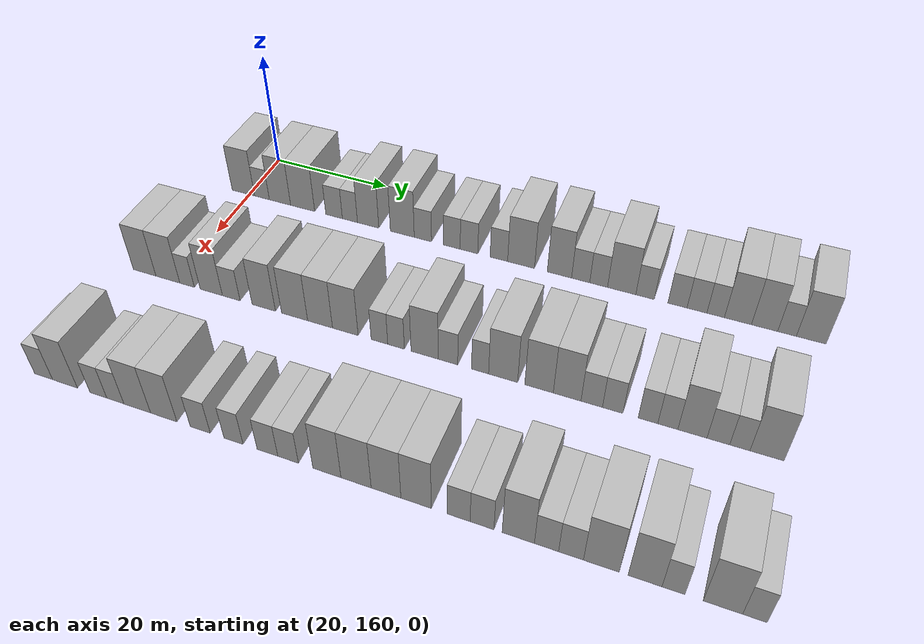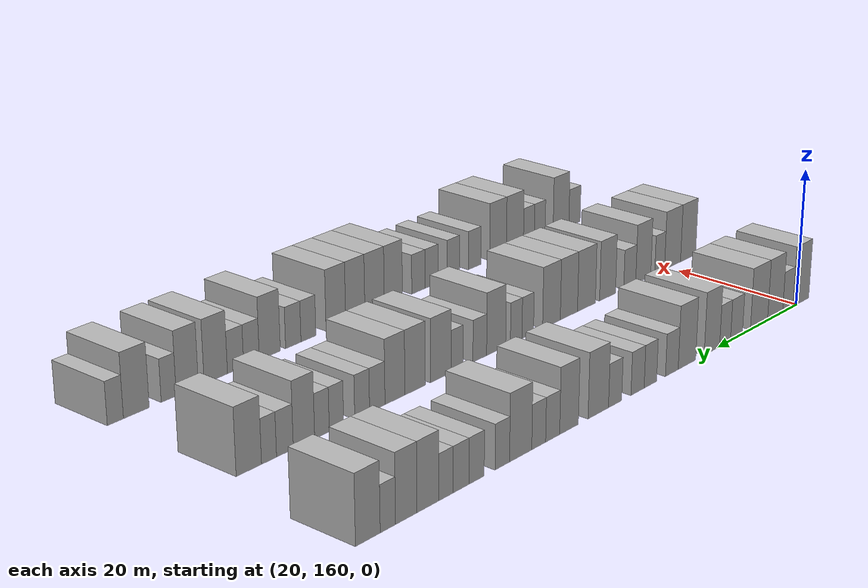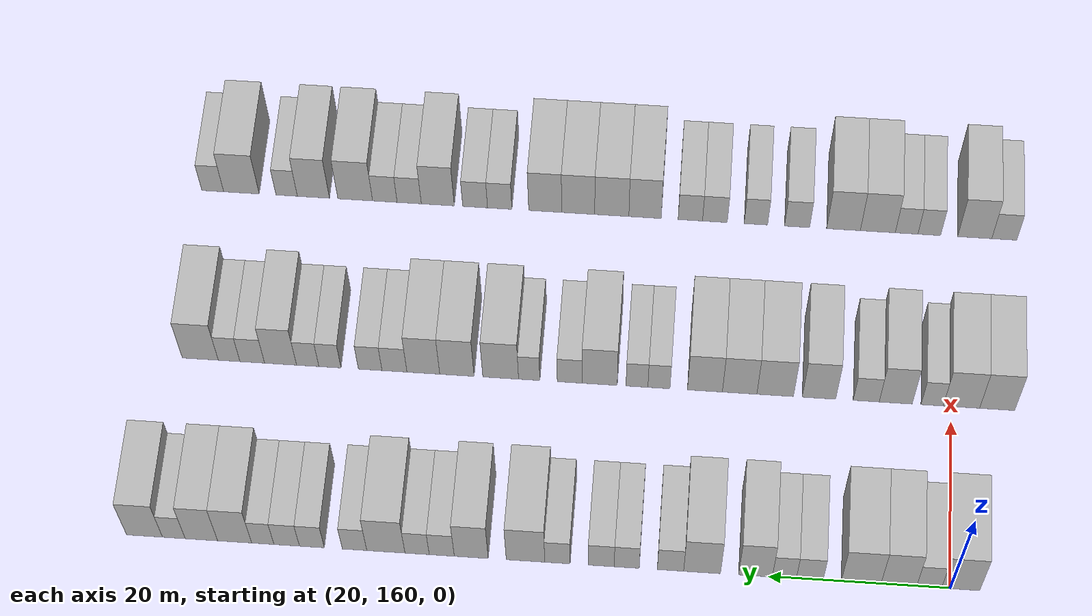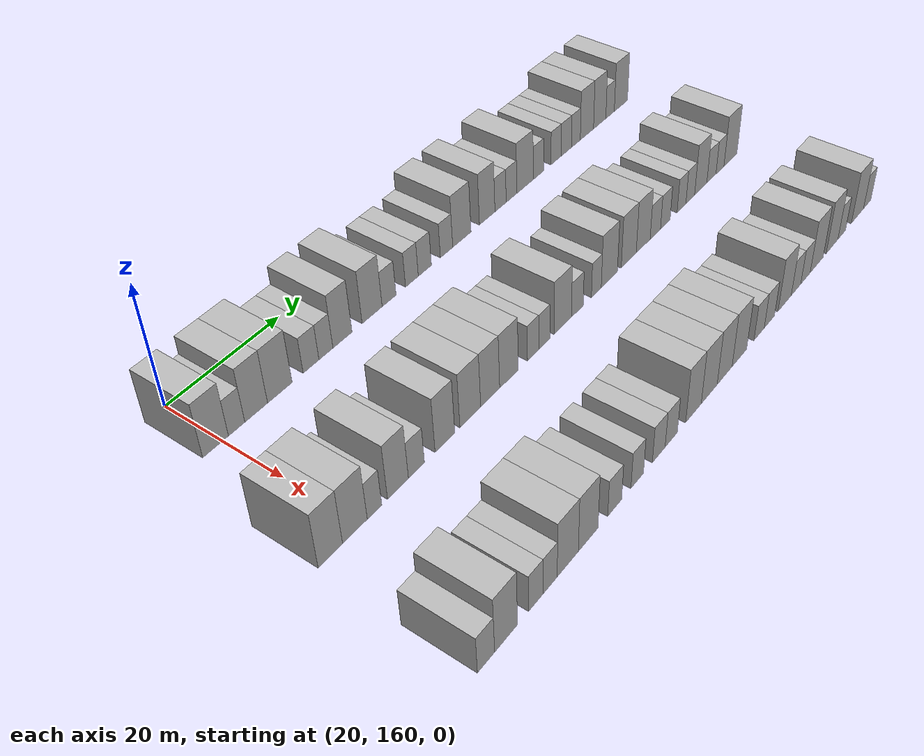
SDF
<sdf version="1.6">
 <world name="default">
  <model name="building_100">
   <static>1</static>
   <pose>25.0000 158.8752 0 0.000000 0.000000 0.000000</pose>
   <link name="link">
    <pose>0 0 4.50 0 0 0</pose>
    <collision name="collision"><geometry><box><size>10.0000 4.2048 9.0000</size></box></geometry></collision>
    <visual name="visual">
     <cast_shadows>0</cast_shadows>
     <geometry><box><size>10.0000 4.2048 9.0000</size></box></geometry>
     <material>
      <script>
       <uri>model://HANNAS_wall/materials/scripts</uri>
       <uri>model://HANNAS_wall/materials/textures</uri>
       <name>vrc/HANNAS_wall</name>
      </script>
     </material>
    </visual>
   </link>
  </model>
  <model name="building_101">
   <static>1</static>
   <pose>25.0000 162.3482 0 0.000000 0.000000 0.000000</pose>
   <link name="link">
    <pose>0 0 3.00 0 0 0</pose>
    <collision name="collision"><geometry><box><size>10.0000 2.7412 6.0000</size></box></geometry></collision>
    <visual name="visual">
     <cast_shadows>0</cast_shadows>
     <geometry><box><size>10.0000 2.7412 6.0000</size></box></geometry>
     <material>
      <script>
       <uri>model://HANNAS_wall/materials/scripts</uri>
       <uri>model://HANNAS_wall/materials/textures</uri>
       <name>vrc/HANNAS_wall</name>
      </script>
     </material>
    </visual>
   </link>
  </model>
  <model name="building_102">
   <static>1</static>
   <pose>25.0000 165.6760 0 0.000000 0.000000 0.000000</pose>
   <link name="link">
    <pose>0 0 4.50 0 0 0</pose>
    <collision name="collision"><geometry><box><size>10.0000 3.9144 9.0000</size></box></geometry></collision>
    <visual name="visual">
     <cast_shadows>0</cast_shadows>
     <geometry><box><size>10.0000 3.9144 9.0000</size></box></geometry>
     <material>
      <script>
       <uri>model://HANNAS_wall/materials/scripts</uri>
       <uri>model://HANNAS_wall/materials/textures</uri>
       <name>vrc/HANNAS_wall</name>
      </script>
     </material>
    </visual>
   </link>
  </model>
  <model name="building_103">
   <static>1</static>
   <pose>25.0000 169.8160 0 0.000000 0.000000 0.000000</pose>
   <link name="link">
    <pose>0 0 4.50 0 0 0</pose>
    <collision name="collision"><geometry><box><size>10.0000 4.3656 9.0000</size></box></geometry></collision>
    <visual name="visual">
     <cast_shadows>0</cast_shadows>
     <geometry><box><size>10.0000 4.3656 9.0000</size></box></geometry>
     <material>
      <script>
       <uri>model://HANNAS_wall/materials/scripts</uri>
       <uri>model://HANNAS_wall/materials/textures</uri>
       <name>vrc/HANNAS_wall</name>
      </script>
     </material>
    </visual>
   </link>
  </model>
  <model name="building_104">
   <static>1</static>
   <pose>25.0000 175.4683 0 0.000000 0.000000 0.000000</pose>
   <link name="link">
    <pose>0 0 3.00 0 0 0</pose>
    <collision name="collision"><geometry><box><size>10.0000 2.9391 6.0000</size></box></geometry></collision>
    <visual name="visual">
     <cast_shadows>0</cast_shadows>
     <geometry><box><size>10.0000 2.9391 6.0000</size></box></geometry>
     <material>
      <script>
       <uri>model://HANNAS_wall/materials/scripts</uri>
       <uri>model://HANNAS_wall/materials/textures</uri>
       <name>vrc/HANNAS_wall</name>
      </script>
     </material>
    </visual>
   </link>
  </model>
  <model name="building_105">
   <static>1</static>
   <pose>25.0000 178.2626 0 0.000000 0.000000 0.000000</pose>
   <link name="link">
    <pose>0 0 3.00 0 0 0</pose>
    <collision name="collision"><geometry><box><size>10.0000 2.6495 6.0000</size></box></geometry></collision>
    <visual name="visual">
     <cast_shadows>0</cast_shadows>
     <geometry><box><size>10.0000 2.6495 6.0000</size></box></geometry>
     <material>
      <script>
       <uri>model://HANNAS_wall/materials/scripts</uri>
       <uri>model://HANNAS_wall/materials/textures</uri>
       <name>vrc/HANNAS_wall</name>
      </script>
     </material>
    </visual>
   </link>
  </model>
  <model name="building_106">
   <static>1</static>
   <pose>25.0000 181.4434 0 0.000000 0.000000 0.000000</pose>
   <link name="link">
    <pose>0 0 4.50 0 0 0</pose>
    <collision name="collision"><geometry><box><size>10.0000 3.7121 9.0000</size></box></geometry></collision>
    <visual name="visual">
     <cast_shadows>0</cast_shadows>
     <geometry><box><size>10.0000 3.7121 9.0000</size></box></geometry>
     <material>
      <script>
       <uri>model://HANNAS_wall/materials/scripts</uri>
       <uri>model://HANNAS_wall/materials/textures</uri>
       <name>vrc/HANNAS_wall</name>
      </script>
     </material>
    </visual>
   </link>
  </model>
  <model name="building_107">
   <static>1</static>
   <pose>25.0000 187.3332 0 0.000000 0.000000 0.000000</pose>
   <link name="link">
    <pose>0 0 4.50 0 0 0</pose>
    <collision name="collision"><geometry><box><size>10.0000 4.0675 9.0000</size></box></geometry></collision>
    <visual name="visual">
     <cast_shadows>0</cast_shadows>
     <geometry><box><size>10.0000 4.0675 9.0000</size></box></geometry>
     <material>
      <script>
       <uri>model://HANNAS_wall/materials/scripts</uri>
       <uri>model://HANNAS_wall/materials/textures</uri>
       <name>vrc/HANNAS_wall</name>
      </script>
     </material>
    </visual>
   </link>
  </model>
  <model name="building_108">
   <static>1</static>
   <pose>25.0000 190.8186 0 0.000000 0.000000 0.000000</pose>
   <link name="link">
    <pose>0 0 3.00 0 0 0</pose>
    <collision name="collision"><geometry><box><size>10.0000 2.9032 6.0000</size></box></geometry></collision>
    <visual name="visual">
     <cast_shadows>0</cast_shadows>
     <geometry><box><size>10.0000 2.9032 6.0000</size></box></geometry>
     <material>
      <script>
       <uri>model://HANNAS_wall/materials/scripts</uri>
       <uri>model://HANNAS_wall/materials/textures</uri>
       <name>vrc/HANNAS_wall</name>
      </script>
     </material>
    </visual>
   </link>
  </model>
  <model name="building_109">
   <static>1</static>
   <pose>25.0000 195.6504 0 0.000000 0.000000 0.000000</pose>
   <link name="link">
    <pose>0 0 3.00 0 0 0</pose>
    <collision name="collision"><geometry><box><size>10.0000 2.7603 6.0000</size></box></geometry></collision>
    <visual name="visual">
     <cast_shadows>0</cast_shadows>
     <geometry><box><size>10.0000 2.7603 6.0000</size></box></geometry>
     <material>
      <script>
       <uri>model://HANNAS_wall/materials/scripts</uri>
       <uri>model://HANNAS_wall/materials/textures</uri>
       <name>vrc/HANNAS_wall</name>
      </script>
     </material>
    </visual>
   </link>
  </model>
  <model name="building_110">
   <static>1</static>
   <pose>25.0000 198.4736 0 0.000000 0.000000 0.000000</pose>
   <link name="link">
    <pose>0 0 3.00 0 0 0</pose>
    <collision name="collision"><geometry><box><size>10.0000 2.8862 6.0000</size></box></geometry></collision>
    <visual name="visual">
     <cast_shadows>0</cast_shadows>
     <geometry><box><size>10.0000 2.8862 6.0000</size></box></geometry>
     <material>
      <script>
       <uri>model://HANNAS_wall/materials/scripts</uri>
       <uri>model://HANNAS_wall/materials/textures</uri>
       <name>vrc/HANNAS_wall</name>
      </script>
     </material>
    </visual>
   </link>
  </model>
  <model name="building_111">
   <static>1</static>
   <pose>25.0000 203.3194 0 0.000000 0.000000 0.000000</pose>
   <link name="link">
    <pose>0 0 3.00 0 0 0</pose>
    <collision name="collision"><geometry><box><size>10.0000 2.8053 6.0000</size></box></geometry></collision>
    <visual name="visual">
     <cast_shadows>0</cast_shadows>
     <geometry><box><size>10.0000 2.8053 6.0000</size></box></geometry>
     <material>
      <script>
       <uri>model://HANNAS_wall/materials/scripts</uri>
       <uri>model://HANNAS_wall/materials/textures</uri>
       <name>vrc/HANNAS_wall</name>
      </script>
     </material>
    </visual>
   </link>
  </model>
  <model name="building_112">
   <static>1</static>
   <pose>25.0000 206.8571 0 0.000000 0.000000 0.000000</pose>
   <link name="link">
    <pose>0 0 4.50 0 0 0</pose>
    <collision name="collision"><geometry><box><size>10.0000 4.2701 9.0000</size></box></geometry></collision>
    <visual name="visual">
     <cast_shadows>0</cast_shadows>
     <geometry><box><size>10.0000 4.2701 9.0000</size></box></geometry>
     <material>
      <script>
       <uri>model://HANNAS_wall/materials/scripts</uri>
       <uri>model://HANNAS_wall/materials/textures</uri>
       <name>vrc/HANNAS_wall</name>
      </script>
     </material>
    </visual>
   </link>
  </model>
  <model name="building_113">
   <static>1</static>
   <pose>25.0000 212.8763 0 0.000000 0.000000 0.000000</pose>
   <link name="link">
    <pose>0 0 4.50 0 0 0</pose>
    <collision name="collision"><geometry><box><size>10.0000 3.7682 9.0000</size></box></geometry></collision>
    <visual name="visual">
     <cast_shadows>0</cast_shadows>
     <geometry><box><size>10.0000 3.7682 9.0000</size></box></geometry>
     <material>
      <script>
       <uri>model://HANNAS_wall/materials/scripts</uri>
       <uri>model://HANNAS_wall/materials/textures</uri>
       <name>vrc/HANNAS_wall</name>
      </script>
     </material>
    </visual>
   </link>
  </model>
  <model name="building_114">
   <static>1</static>
   <pose>25.0000 216.1516 0 0.000000 0.000000 0.000000</pose>
   <link name="link">
    <pose>0 0 3.00 0 0 0</pose>
    <collision name="collision"><geometry><box><size>10.0000 2.7823 6.0000</size></box></geometry></collision>
    <visual name="visual">
     <cast_shadows>0</cast_shadows>
     <geometry><box><size>10.0000 2.7823 6.0000</size></box></geometry>
     <material>
      <script>
       <uri>model://HANNAS_wall/materials/scripts</uri>
       <uri>model://HANNAS_wall/materials/textures</uri>
       <name>vrc/HANNAS_wall</name>
      </script>
     </material>
    </visual>
   </link>
  </model>
  <model name="building_115">
   <static>1</static>
   <pose>25.0000 218.8928 0 0.000000 0.000000 0.000000</pose>
   <link name="link">
    <pose>0 0 3.00 0 0 0</pose>
    <collision name="collision"><geometry><box><size>10.0000 2.7000 6.0000</size></box></geometry></collision>
    <visual name="visual">
     <cast_shadows>0</cast_shadows>
     <geometry><box><size>10.0000 2.7000 6.0000</size></box></geometry>
     <material>
      <script>
       <uri>model://HANNAS_wall/materials/scripts</uri>
       <uri>model://HANNAS_wall/materials/textures</uri>
       <name>vrc/HANNAS_wall</name>
      </script>
     </material>
    </visual>
   </link>
  </model>
  <model name="building_116">
   <static>1</static>
   <pose>25.0000 222.3644 0 0.000000 0.000000 0.000000</pose>
   <link name="link">
    <pose>0 0 4.50 0 0 0</pose>
    <collision name="collision"><geometry><box><size>10.0000 4.2433 9.0000</size></box></geometry></collision>
    <visual name="visual">
     <cast_shadows>0</cast_shadows>
     <geometry><box><size>10.0000 4.2433 9.0000</size></box></geometry>
     <material>
      <script>
       <uri>model://HANNAS_wall/materials/scripts</uri>
       <uri>model://HANNAS_wall/materials/textures</uri>
       <name>vrc/HANNAS_wall</name>
      </script>
     </material>
    </visual>
   </link>
  </model>
  <model name="building_117">
   <static>1</static>
   <pose>25.0000 225.8484 0 0.000000 0.000000 0.000000</pose>
   <link name="link">
    <pose>0 0 3.00 0 0 0</pose>
    <collision name="collision"><geometry><box><size>10.0000 2.7247 6.0000</size></box></geometry></collision>
    <visual name="visual">
     <cast_shadows>0</cast_shadows>
     <geometry><box><size>10.0000 2.7247 6.0000</size></box></geometry>
     <material>
      <script>
       <uri>model://HANNAS_wall/materials/scripts</uri>
       <uri>model://HANNAS_wall/materials/textures</uri>
       <name>vrc/HANNAS_wall</name>
      </script>
     </material>
    </visual>
   </link>
  </model>
  <model name="building_118">
   <static>1</static>
   <pose>25.0000 230.5995 0 0.000000 0.000000 0.000000</pose>
   <link name="link">
    <pose>0 0 3.00 0 0 0</pose>
    <collision name="collision"><geometry><box><size>10.0000 2.7774 6.0000</size></box></geometry></collision>
    <visual name="visual">
     <cast_shadows>0</cast_shadows>
     <geometry><box><size>10.0000 2.7774 6.0000</size></box></geometry>
     <material>
      <script>
       <uri>model://HANNAS_wall/materials/scripts</uri>
       <uri>model://HANNAS_wall/materials/textures</uri>
       <name>vrc/HANNAS_wall</name>
      </script>
     </material>
    </visual>
   </link>
  </model>
  <model name="building_119">
   <static>1</static>
   <pose>25.0000 233.4078 0 0.000000 0.000000 0.000000</pose>
   <link name="link">
    <pose>0 0 3.00 0 0 0</pose>
    <collision name="collision"><geometry><box><size>10.0000 2.8394 6.0000</size></box></geometry></collision>
    <visual name="visual">
     <cast_shadows>0</cast_shadows>
     <geometry><box><size>10.0000 2.8394 6.0000</size></box></geometry>
     <material>
      <script>
       <uri>model://HANNAS_wall/materials/scripts</uri>
       <uri>model://HANNAS_wall/materials/textures</uri>
       <name>vrc/HANNAS_wall</name>
      </script>
     </material>
    </visual>
   </link>
  </model>
  <model name="building_120">
   <static>1</static>
   <pose>25.0000 236.0724 0 0.000000 0.000000 0.000000</pose>
   <link name="link">
    <pose>0 0 3.00 0 0 0</pose>
    <collision name="collision"><geometry><box><size>10.0000 2.4897 6.0000</size></box></geometry></collision>
    <visual name="visual">
     <cast_shadows>0</cast_shadows>
     <geometry><box><size>10.0000 2.4897 6.0000</size></box></geometry>
     <material>
      <script>
       <uri>model://HANNAS_wall/materials/scripts</uri>
       <uri>model://HANNAS_wall/materials/textures</uri>
       <name>vrc/HANNAS_wall</name>
      </script>
     </material>
    </visual>
   </link>
  </model>
  <model name="building_121">
   <static>1</static>
   <pose>25.0000 239.2196 0 0.000000 0.000000 0.000000</pose>
   <link name="link">
    <pose>0 0 4.50 0 0 0</pose>
    <collision name="collision"><geometry><box><size>10.0000 3.8048 9.0000</size></box></geometry></collision>
    <visual name="visual">
     <cast_shadows>0</cast_shadows>
     <geometry><box><size>10.0000 3.8048 9.0000</size></box></geometry>
     <material>
      <script>
       <uri>model://HANNAS_wall/materials/scripts</uri>
       <uri>model://HANNAS_wall/materials/textures</uri>
       <name>vrc/HANNAS_wall</name>
      </script>
     </material>
    </visual>
   </link>
  </model>
  <model name="building_122">
   <static>1</static>
   <pose>25.0000 242.9313 0 0.000000 0.000000 0.000000</pose>
   <link name="link">
    <pose>0 0 4.50 0 0 0</pose>
    <collision name="collision"><geometry><box><size>10.0000 3.6185 9.0000</size></box></geometry></collision>
    <visual name="visual">
     <cast_shadows>0</cast_shadows>
     <geometry><box><size>10.0000 3.6185 9.0000</size></box></geometry>
     <material>
      <script>
       <uri>model://HANNAS_wall/materials/scripts</uri>
       <uri>model://HANNAS_wall/materials/textures</uri>
       <name>vrc/HANNAS_wall</name>
      </script>
     </material>
    </visual>
   </link>
  </model>
  <model name="building_123">
   <static>1</static>
   <pose>25.0000 246.0119 0 0.000000 0.000000 0.000000</pose>
   <link name="link">
    <pose>0 0 3.00 0 0 0</pose>
    <collision name="collision"><geometry><box><size>10.0000 2.5428 6.0000</size></box></geometry></collision>
    <visual name="visual">
     <cast_shadows>0</cast_shadows>
     <geometry><box><size>10.0000 2.5428 6.0000</size></box></geometry>
     <material>
      <script>
       <uri>model://HANNAS_wall/materials/scripts</uri>
       <uri>model://HANNAS_wall/materials/textures</uri>
       <name>vrc/HANNAS_wall</name>
      </script>
     </material>
    </visual>
   </link>
  </model>
  <model name="building_124">
   <static>1</static>
   <pose>25.0000 249.2916 0 0.000000 0.000000 0.000000</pose>
   <link name="link">
    <pose>0 0 4.50 0 0 0</pose>
    <collision name="collision"><geometry><box><size>10.0000 4.0164 9.0000</size></box></geometry></collision>
    <visual name="visual">
     <cast_shadows>0</cast_shadows>
     <geometry><box><size>10.0000 4.0164 9.0000</size></box></geometry>
     <material>
      <script>
       <uri>model://HANNAS_wall/materials/scripts</uri>
       <uri>model://HANNAS_wall/materials/textures</uri>
       <name>vrc/HANNAS_wall</name>
      </script>
     </material>
    </visual>
   </link>
  </model>
  <model name="building_224">
   <static>1</static>
   <pose>47.0000 154.8092 0 0.000000 0.000000 0.000000</pose>
   <link name="link">
    <pose>0 0 4.50 0 0 0</pose>
    <collision name="collision"><geometry><box><size>10.0000 3.9777 9.0000</size></box></geometry></collision>
    <visual name="visual">
     <cast_shadows>0</cast_shadows>
     <geometry><box><size>10.0000 3.9777 9.0000</size></box></geometry>
     <material>
      <script>
       <uri>model://HANNAS_wall/materials/scripts</uri>
       <uri>model://HANNAS_wall/materials/textures</uri>
       <name>vrc/HANNAS_wall</name>
      </script>
     </material>
    </visual>
   </link>
  </model>
  <model name="building_225">
   <static>1</static>
   <pose>47.0000 158.8760 0 0.000000 0.000000 0.000000</pose>
   <link name="link">
    <pose>0 0 4.50 0 0 0</pose>
    <collision name="collision"><geometry><box><size>10.0000 4.1559 9.0000</size></box></geometry></collision>
    <visual name="visual">
     <cast_shadows>0</cast_shadows>
     <geometry><box><size>10.0000 4.1559 9.0000</size></box></geometry>
     <material>
      <script>
       <uri>model://HANNAS_wall/materials/scripts</uri>
       <uri>model://HANNAS_wall/materials/textures</uri>
       <name>vrc/HANNAS_wall</name>
      </script>
     </material>
    </visual>
   </link>
  </model>
  <model name="building_226">
   <static>1</static>
   <pose>47.0000 162.2074 0 0.000000 0.000000 0.000000</pose>
   <link name="link">
    <pose>0 0 3.00 0 0 0</pose>
    <collision name="collision"><geometry><box><size>10.0000 2.5068 6.0000</size></box></geometry></collision>
    <visual name="visual">
     <cast_shadows>0</cast_shadows>
     <geometry><box><size>10.0000 2.5068 6.0000</size></box></geometry>
     <material>
      <script>
       <uri>model://HANNAS_wall/materials/scripts</uri>
       <uri>model://HANNAS_wall/materials/textures</uri>
       <name>vrc/HANNAS_wall</name>
      </script>
     </material>
    </visual>
   </link>
  </model>
  <model name="building_227">
   <static>1</static>
   <pose>47.0000 166.3402 0 0.000000 0.000000 0.000000</pose>
   <link name="link">
    <pose>0 0 4.50 0 0 0</pose>
    <collision name="collision"><geometry><box><size>10.0000 3.7588 9.0000</size></box></geometry></collision>
    <visual name="visual">
     <cast_shadows>0</cast_shadows>
     <geometry><box><size>10.0000 3.7588 9.0000</size></box></geometry>
     <material>
      <script>
       <uri>model://HANNAS_wall/materials/scripts</uri>
       <uri>model://HANNAS_wall/materials/textures</uri>
       <name>vrc/HANNAS_wall</name>
      </script>
     </material>
    </visual>
   </link>
  </model>
  <model name="building_228">
   <static>1</static>
   <pose>47.0000 169.6951 0 0.000000 0.000000 0.000000</pose>
   <link name="link">
    <pose>0 0 3.00 0 0 0</pose>
    <collision name="collision"><geometry><box><size>10.0000 2.9511 6.0000</size></box></geometry></collision>
    <visual name="visual">
     <cast_shadows>0</cast_shadows>
     <geometry><box><size>10.0000 2.9511 6.0000</size></box></geometry>
     <material>
      <script>
       <uri>model://HANNAS_wall/materials/scripts</uri>
       <uri>model://HANNAS_wall/materials/textures</uri>
       <name>vrc/HANNAS_wall</name>
      </script>
     </material>
    </visual>
   </link>
  </model>
  <model name="building_229">
   <static>1</static>
   <pose>47.0000 175.0776 0 0.000000 0.000000 0.000000</pose>
   <link name="link">
    <pose>0 0 4.50 0 0 0</pose>
    <collision name="collision"><geometry><box><size>10.0000 3.8137 9.0000</size></box></geometry></collision>
    <visual name="visual">
     <cast_shadows>0</cast_shadows>
     <geometry><box><size>10.0000 3.8137 9.0000</size></box></geometry>
     <material>
      <script>
       <uri>model://HANNAS_wall/materials/scripts</uri>
       <uri>model://HANNAS_wall/materials/textures</uri>
       <name>vrc/HANNAS_wall</name>
      </script>
     </material>
    </visual>
   </link>
  </model>
  <model name="building_230">
   <static>1</static>
   <pose>47.0000 180.0721 0 0.000000 0.000000 0.000000</pose>
   <link name="link">
    <pose>0 0 4.50 0 0 0</pose>
    <collision name="collision"><geometry><box><size>10.0000 4.1753 9.0000</size></box></geometry></collision>
    <visual name="visual">
     <cast_shadows>0</cast_shadows>
     <geometry><box><size>10.0000 4.1753 9.0000</size></box></geometry>
     <material>
      <script>
       <uri>model://HANNAS_wall/materials/scripts</uri>
       <uri>model://HANNAS_wall/materials/textures</uri>
       <name>vrc/HANNAS_wall</name>
      </script>
     </material>
    </visual>
   </link>
  </model>
  <model name="building_231">
   <static>1</static>
   <pose>47.0000 184.1276 0 0.000000 0.000000 0.000000</pose>
   <link name="link">
    <pose>0 0 4.50 0 0 0</pose>
    <collision name="collision"><geometry><box><size>10.0000 3.9358 9.0000</size></box></geometry></collision>
    <visual name="visual">
     <cast_shadows>0</cast_shadows>
     <geometry><box><size>10.0000 3.9358 9.0000</size></box></geometry>
     <material>
      <script>
       <uri>model://HANNAS_wall/materials/scripts</uri>
       <uri>model://HANNAS_wall/materials/textures</uri>
       <name>vrc/HANNAS_wall</name>
      </script>
     </material>
    </visual>
   </link>
  </model>
  <model name="building_232">
   <static>1</static>
   <pose>47.0000 188.0888 0 0.000000 0.000000 0.000000</pose>
   <link name="link">
    <pose>0 0 4.50 0 0 0</pose>
    <collision name="collision"><geometry><box><size>10.0000 3.9865 9.0000</size></box></geometry></collision>
    <visual name="visual">
     <cast_shadows>0</cast_shadows>
     <geometry><box><size>10.0000 3.9865 9.0000</size></box></geometry>
     <material>
      <script>
       <uri>model://HANNAS_wall/materials/scripts</uri>
       <uri>model://HANNAS_wall/materials/textures</uri>
       <name>vrc/HANNAS_wall</name>
      </script>
     </material>
    </visual>
   </link>
  </model>
  <model name="building_233">
   <static>1</static>
   <pose>47.0000 193.3440 0 0.000000 0.000000 0.000000</pose>
   <link name="link">
    <pose>0 0 3.00 0 0 0</pose>
    <collision name="collision"><geometry><box><size>10.0000 2.5238 6.0000</size></box></geometry></collision>
    <visual name="visual">
     <cast_shadows>0</cast_shadows>
     <geometry><box><size>10.0000 2.5238 6.0000</size></box></geometry>
     <material>
      <script>
       <uri>model://HANNAS_wall/materials/scripts</uri>
       <uri>model://HANNAS_wall/materials/textures</uri>
       <name>vrc/HANNAS_wall</name>
      </script>
     </material>
    </visual>
   </link>
  </model>
  <model name="building_234">
   <static>1</static>
   <pose>47.0000 195.8590 0 0.000000 0.000000 0.000000</pose>
   <link name="link">
    <pose>0 0 3.00 0 0 0</pose>
    <collision name="collision"><geometry><box><size>10.0000 2.5062 6.0000</size></box></geometry></collision>
    <visual name="visual">
     <cast_shadows>0</cast_shadows>
     <geometry><box><size>10.0000 2.5062 6.0000</size></box></geometry>
     <material>
      <script>
       <uri>model://HANNAS_wall/materials/scripts</uri>
       <uri>model://HANNAS_wall/materials/textures</uri>
       <name>vrc/HANNAS_wall</name>
      </script>
     </material>
    </visual>
   </link>
  </model>
  <model name="building_235">
   <static>1</static>
   <pose>47.0000 200.1264 0 0.000000 0.000000 0.000000</pose>
   <link name="link">
    <pose>0 0 4.50 0 0 0</pose>
    <collision name="collision"><geometry><box><size>10.0000 4.0287 9.0000</size></box></geometry></collision>
    <visual name="visual">
     <cast_shadows>0</cast_shadows>
     <geometry><box><size>10.0000 4.0287 9.0000</size></box></geometry>
     <material>
      <script>
       <uri>model://HANNAS_wall/materials/scripts</uri>
       <uri>model://HANNAS_wall/materials/textures</uri>
       <name>vrc/HANNAS_wall</name>
      </script>
     </material>
    </visual>
   </link>
  </model>
  <model name="building_236">
   <static>1</static>
   <pose>47.0000 203.5623 0 0.000000 0.000000 0.000000</pose>
   <link name="link">
    <pose>0 0 3.00 0 0 0</pose>
    <collision name="collision"><geometry><box><size>10.0000 2.8430 6.0000</size></box></geometry></collision>
    <visual name="visual">
     <cast_shadows>0</cast_shadows>
     <geometry><box><size>10.0000 2.8430 6.0000</size></box></geometry>
     <material>
      <script>
       <uri>model://HANNAS_wall/materials/scripts</uri>
       <uri>model://HANNAS_wall/materials/textures</uri>
       <name>vrc/HANNAS_wall</name>
      </script>
     </material>
    </visual>
   </link>
  </model>
  <model name="building_237">
   <static>1</static>
   <pose>47.0000 208.2045 0 0.000000 0.000000 0.000000</pose>
   <link name="link">
    <pose>0 0 3.00 0 0 0</pose>
    <collision name="collision"><geometry><box><size>10.0000 2.4414 6.0000</size></box></geometry></collision>
    <visual name="visual">
     <cast_shadows>0</cast_shadows>
     <geometry><box><size>10.0000 2.4414 6.0000</size></box></geometry>
     <material>
      <script>
       <uri>model://HANNAS_wall/materials/scripts</uri>
       <uri>model://HANNAS_wall/materials/textures</uri>
       <name>vrc/HANNAS_wall</name>
      </script>
     </material>
    </visual>
   </link>
  </model>
  <model name="building_238">
   <static>1</static>
   <pose>47.0000 211.4776 0 0.000000 0.000000 0.000000</pose>
   <link name="link">
    <pose>0 0 4.50 0 0 0</pose>
    <collision name="collision"><geometry><box><size>10.0000 4.1047 9.0000</size></box></geometry></collision>
    <visual name="visual">
     <cast_shadows>0</cast_shadows>
     <geometry><box><size>10.0000 4.1047 9.0000</size></box></geometry>
     <material>
      <script>
       <uri>model://HANNAS_wall/materials/scripts</uri>
       <uri>model://HANNAS_wall/materials/textures</uri>
       <name>vrc/HANNAS_wall</name>
      </script>
     </material>
    </visual>
   </link>
  </model>
  <model name="building_239">
   <static>1</static>
   <pose>47.0000 216.5029 0 0.000000 0.000000 0.000000</pose>
   <link name="link">
    <pose>0 0 4.50 0 0 0</pose>
    <collision name="collision"><geometry><box><size>10.0000 3.9459 9.0000</size></box></geometry></collision>
    <visual name="visual">
     <cast_shadows>0</cast_shadows>
     <geometry><box><size>10.0000 3.9459 9.0000</size></box></geometry>
     <material>
      <script>
       <uri>model://HANNAS_wall/materials/scripts</uri>
       <uri>model://HANNAS_wall/materials/textures</uri>
       <name>vrc/HANNAS_wall</name>
      </script>
     </material>
    </visual>
   </link>
  </model>
  <model name="building_240">
   <static>1</static>
   <pose>47.0000 220.3631 0 0.000000 0.000000 0.000000</pose>
   <link name="link">
    <pose>0 0 4.50 0 0 0</pose>
    <collision name="collision"><geometry><box><size>10.0000 3.7744 9.0000</size></box></geometry></collision>
    <visual name="visual">
     <cast_shadows>0</cast_shadows>
     <geometry><box><size>10.0000 3.7744 9.0000</size></box></geometry>
     <material>
      <script>
       <uri>model://HANNAS_wall/materials/scripts</uri>
       <uri>model://HANNAS_wall/materials/textures</uri>
       <name>vrc/HANNAS_wall</name>
      </script>
     </material>
    </visual>
   </link>
  </model>
  <model name="building_241">
   <static>1</static>
   <pose>47.0000 223.6880 0 0.000000 0.000000 0.000000</pose>
   <link name="link">
    <pose>0 0 3.00 0 0 0</pose>
    <collision name="collision"><geometry><box><size>10.0000 2.8755 6.0000</size></box></geometry></collision>
    <visual name="visual">
     <cast_shadows>0</cast_shadows>
     <geometry><box><size>10.0000 2.8755 6.0000</size></box></geometry>
     <material>
      <script>
       <uri>model://HANNAS_wall/materials/scripts</uri>
       <uri>model://HANNAS_wall/materials/textures</uri>
       <name>vrc/HANNAS_wall</name>
      </script>
     </material>
    </visual>
   </link>
  </model>
  <model name="building_242">
   <static>1</static>
   <pose>47.0000 226.4848 0 0.000000 0.000000 0.000000</pose>
   <link name="link">
    <pose>0 0 3.00 0 0 0</pose>
    <collision name="collision"><geometry><box><size>10.0000 2.7181 6.0000</size></box></geometry></collision>
    <visual name="visual">
     <cast_shadows>0</cast_shadows>
     <geometry><box><size>10.0000 2.7181 6.0000</size></box></geometry>
     <material>
      <script>
       <uri>model://HANNAS_wall/materials/scripts</uri>
       <uri>model://HANNAS_wall/materials/textures</uri>
       <name>vrc/HANNAS_wall</name>
      </script>
     </material>
    </visual>
   </link>
  </model>
  <model name="building_243">
   <static>1</static>
   <pose>47.0000 231.1227 0 0.000000 0.000000 0.000000</pose>
   <link name="link">
    <pose>0 0 3.00 0 0 0</pose>
    <collision name="collision"><geometry><box><size>10.0000 2.5577 6.0000</size></box></geometry></collision>
    <visual name="visual">
     <cast_shadows>0</cast_shadows>
     <geometry><box><size>10.0000 2.5577 6.0000</size></box></geometry>
     <material>
      <script>
       <uri>model://HANNAS_wall/materials/scripts</uri>
       <uri>model://HANNAS_wall/materials/textures</uri>
       <name>vrc/HANNAS_wall</name>
      </script>
     </material>
    </visual>
   </link>
  </model>
  <model name="building_244">
   <static>1</static>
   <pose>47.0000 233.6880 0 0.000000 0.000000 0.000000</pose>
   <link name="link">
    <pose>0 0 3.00 0 0 0</pose>
    <collision name="collision"><geometry><box><size>10.0000 2.5729 6.0000</size></box></geometry></collision>
    <visual name="visual">
     <cast_shadows>0</cast_shadows>
     <geometry><box><size>10.0000 2.5729 6.0000</size></box></geometry>
     <material>
      <script>
       <uri>model://HANNAS_wall/materials/scripts</uri>
       <uri>model://HANNAS_wall/materials/textures</uri>
       <name>vrc/HANNAS_wall</name>
      </script>
     </material>
    </visual>
   </link>
  </model>
  <model name="building_245">
   <static>1</static>
   <pose>47.0000 236.8201 0 0.000000 0.000000 0.000000</pose>
   <link name="link">
    <pose>0 0 4.50 0 0 0</pose>
    <collision name="collision"><geometry><box><size>10.0000 3.6914 9.0000</size></box></geometry></collision>
    <visual name="visual">
     <cast_shadows>0</cast_shadows>
     <geometry><box><size>10.0000 3.6914 9.0000</size></box></geometry>
     <material>
      <script>
       <uri>model://HANNAS_wall/materials/scripts</uri>
       <uri>model://HANNAS_wall/materials/textures</uri>
       <name>vrc/HANNAS_wall</name>
      </script>
     </material>
    </visual>
   </link>
  </model>
  <model name="building_246">
   <static>1</static>
   <pose>47.0000 240.0877 0 0.000000 0.000000 0.000000</pose>
   <link name="link">
    <pose>0 0 3.00 0 0 0</pose>
    <collision name="collision"><geometry><box><size>10.0000 2.8438 6.0000</size></box></geometry></collision>
    <visual name="visual">
     <cast_shadows>0</cast_shadows>
     <geometry><box><size>10.0000 2.8438 6.0000</size></box></geometry>
     <material>
      <script>
       <uri>model://HANNAS_wall/materials/scripts</uri>
       <uri>model://HANNAS_wall/materials/textures</uri>
       <name>vrc/HANNAS_wall</name>
      </script>
     </material>
    </visual>
   </link>
  </model>
  <model name="building_247">
   <static>1</static>
   <pose>47.0000 242.7607 0 0.000000 0.000000 0.000000</pose>
   <link name="link">
    <pose>0 0 3.00 0 0 0</pose>
    <collision name="collision"><geometry><box><size>10.0000 2.5021 6.0000</size></box></geometry></collision>
    <visual name="visual">
     <cast_shadows>0</cast_shadows>
     <geometry><box><size>10.0000 2.5021 6.0000</size></box></geometry>
     <material>
      <script>
       <uri>model://HANNAS_wall/materials/scripts</uri>
       <uri>model://HANNAS_wall/materials/textures</uri>
       <name>vrc/HANNAS_wall</name>
      </script>
     </material>
    </visual>
   </link>
  </model>
  <model name="building_248">
   <static>1</static>
   <pose>47.0000 246.0898 0 0.000000 0.000000 0.000000</pose>
   <link name="link">
    <pose>0 0 4.50 0 0 0</pose>
    <collision name="collision"><geometry><box><size>10.0000 4.1561 9.0000</size></box></geometry></collision>
    <visual name="visual">
     <cast_shadows>0</cast_shadows>
     <geometry><box><size>10.0000 4.1561 9.0000</size></box></geometry>
     <material>
      <script>
       <uri>model://HANNAS_wall/materials/scripts</uri>
       <uri>model://HANNAS_wall/materials/textures</uri>
       <name>vrc/HANNAS_wall</name>
      </script>
     </material>
    </visual>
   </link>
  </model>
  <model name="building_348">
   <static>1</static>
   <pose>69.0000 153.9254 0 0.000000 0.000000 0.000000</pose>
   <link name="link">
    <pose>0 0 3.00 0 0 0</pose>
    <collision name="collision"><geometry><box><size>10.0000 2.9284 6.0000</size></box></geometry></collision>
    <visual name="visual">
     <cast_shadows>0</cast_shadows>
     <geometry><box><size>10.0000 2.9284 6.0000</size></box></geometry>
     <material>
      <script>
       <uri>model://HANNAS_wall/materials/scripts</uri>
       <uri>model://HANNAS_wall/materials/textures</uri>
       <name>vrc/HANNAS_wall</name>
      </script>
     </material>
    </visual>
   </link>
  </model>
  <model name="building_349">
   <static>1</static>
   <pose>69.0000 157.3922 0 0.000000 0.000000 0.000000</pose>
   <link name="link">
    <pose>0 0 4.50 0 0 0</pose>
    <collision name="collision"><geometry><box><size>10.0000 4.0051 9.0000</size></box></geometry></collision>
    <visual name="visual">
     <cast_shadows>0</cast_shadows>
     <geometry><box><size>10.0000 4.0051 9.0000</size></box></geometry>
     <material>
      <script>
       <uri>model://HANNAS_wall/materials/scripts</uri>
       <uri>model://HANNAS_wall/materials/textures</uri>
       <name>vrc/HANNAS_wall</name>
      </script>
     </material>
    </visual>
   </link>
  </model>
  <model name="building_350">
   <static>1</static>
   <pose>69.0000 162.7267 0 0.000000 0.000000 0.000000</pose>
   <link name="link">
    <pose>0 0 3.00 0 0 0</pose>
    <collision name="collision"><geometry><box><size>10.0000 2.6641 6.0000</size></box></geometry></collision>
    <visual name="visual">
     <cast_shadows>0</cast_shadows>
     <geometry><box><size>10.0000 2.6641 6.0000</size></box></geometry>
     <material>
      <script>
       <uri>model://HANNAS_wall/materials/scripts</uri>
       <uri>model://HANNAS_wall/materials/textures</uri>
       <name>vrc/HANNAS_wall</name>
      </script>
     </material>
    </visual>
   </link>
  </model>
  <model name="building_351">
   <static>1</static>
   <pose>69.0000 165.3927 0 0.000000 0.000000 0.000000</pose>
   <link name="link">
    <pose>0 0 3.00 0 0 0</pose>
    <collision name="collision"><geometry><box><size>10.0000 2.6678 6.0000</size></box></geometry></collision>
    <visual name="visual">
     <cast_shadows>0</cast_shadows>
     <geometry><box><size>10.0000 2.6678 6.0000</size></box></geometry>
     <material>
      <script>
       <uri>model://HANNAS_wall/materials/scripts</uri>
       <uri>model://HANNAS_wall/materials/textures</uri>
       <name>vrc/HANNAS_wall</name>
      </script>
     </material>
    </visual>
   </link>
  </model>
  <model name="building_352">
   <static>1</static>
   <pose>69.0000 168.7818 0 0.000000 0.000000 0.000000</pose>
   <link name="link">
    <pose>0 0 4.50 0 0 0</pose>
    <collision name="collision"><geometry><box><size>10.0000 4.1105 9.0000</size></box></geometry></collision>
    <visual name="visual">
     <cast_shadows>0</cast_shadows>
     <geometry><box><size>10.0000 4.1105 9.0000</size></box></geometry>
     <material>
      <script>
       <uri>model://HANNAS_wall/materials/scripts</uri>
       <uri>model://HANNAS_wall/materials/textures</uri>
       <name>vrc/HANNAS_wall</name>
      </script>
     </material>
    </visual>
   </link>
  </model>
  <model name="building_353">
   <static>1</static>
   <pose>69.0000 172.8211 0 0.000000 0.000000 0.000000</pose>
   <link name="link">
    <pose>0 0 4.50 0 0 0</pose>
    <collision name="collision"><geometry><box><size>10.0000 3.9680 9.0000</size></box></geometry></collision>
    <visual name="visual">
     <cast_shadows>0</cast_shadows>
     <geometry><box><size>10.0000 3.9680 9.0000</size></box></geometry>
     <material>
      <script>
       <uri>model://HANNAS_wall/materials/scripts</uri>
       <uri>model://HANNAS_wall/materials/textures</uri>
       <name>vrc/HANNAS_wall</name>
      </script>
     </material>
    </visual>
   </link>
  </model>
  <model name="building_354">
   <static>1</static>
   <pose>69.0000 178.2837 0 0.000000 0.000000 0.000000</pose>
   <link name="link">
    <pose>0 0 3.00 0 0 0</pose>
    <collision name="collision"><geometry><box><size>10.0000 2.9573 6.0000</size></box></geometry></collision>
    <visual name="visual">
     <cast_shadows>0</cast_shadows>
     <geometry><box><size>10.0000 2.9573 6.0000</size></box></geometry>
     <material>
      <script>
       <uri>model://HANNAS_wall/materials/scripts</uri>
       <uri>model://HANNAS_wall/materials/textures</uri>
       <name>vrc/HANNAS_wall</name>
      </script>
     </material>
    </visual>
   </link>
  </model>
  <model name="building_355">
   <static>1</static>
   <pose>69.0000 183.1433 0 0.000000 0.000000 0.000000</pose>
   <link name="link">
    <pose>0 0 3.00 0 0 0</pose>
    <collision name="collision"><geometry><box><size>10.0000 2.7618 6.0000</size></box></geometry></collision>
    <visual name="visual">
     <cast_shadows>0</cast_shadows>
     <geometry><box><size>10.0000 2.7618 6.0000</size></box></geometry>
     <material>
      <script>
       <uri>model://HANNAS_wall/materials/scripts</uri>
       <uri>model://HANNAS_wall/materials/textures</uri>
       <name>vrc/HANNAS_wall</name>
      </script>
     </material>
    </visual>
   </link>
  </model>
  <model name="building_356">
   <static>1</static>
   <pose>69.0000 187.9873 0 0.000000 0.000000 0.000000</pose>
   <link name="link">
    <pose>0 0 3.00 0 0 0</pose>
    <collision name="collision"><geometry><box><size>10.0000 2.9260 6.0000</size></box></geometry></collision>
    <visual name="visual">
     <cast_shadows>0</cast_shadows>
     <geometry><box><size>10.0000 2.9260 6.0000</size></box></geometry>
     <material>
      <script>
       <uri>model://HANNAS_wall/materials/scripts</uri>
       <uri>model://HANNAS_wall/materials/textures</uri>
       <name>vrc/HANNAS_wall</name>
      </script>
     </material>
    </visual>
   </link>
  </model>
  <model name="building_357">
   <static>1</static>
   <pose>69.0000 190.8887 0 0.000000 0.000000 0.000000</pose>
   <link name="link">
    <pose>0 0 3.00 0 0 0</pose>
    <collision name="collision"><geometry><box><size>10.0000 2.8769 6.0000</size></box></geometry></collision>
    <visual name="visual">
     <cast_shadows>0</cast_shadows>
     <geometry><box><size>10.0000 2.8769 6.0000</size></box></geometry>
     <material>
      <script>
       <uri>model://HANNAS_wall/materials/scripts</uri>
       <uri>model://HANNAS_wall/materials/textures</uri>
       <name>vrc/HANNAS_wall</name>
      </script>
     </material>
    </visual>
   </link>
  </model>
  <model name="building_358">
   <static>1</static>
   <pose>69.0000 196.2394 0 0.000000 0.000000 0.000000</pose>
   <link name="link">
    <pose>0 0 4.50 0 0 0</pose>
    <collision name="collision"><geometry><box><size>10.0000 3.8245 9.0000</size></box></geometry></collision>
    <visual name="visual">
     <cast_shadows>0</cast_shadows>
     <geometry><box><size>10.0000 3.8245 9.0000</size></box></geometry>
     <material>
      <script>
       <uri>model://HANNAS_wall/materials/scripts</uri>
       <uri>model://HANNAS_wall/materials/textures</uri>
       <name>vrc/HANNAS_wall</name>
      </script>
     </material>
    </visual>
   </link>
  </model>
  <model name="building_359">
   <static>1</static>
   <pose>69.0000 200.1713 0 0.000000 0.000000 0.000000</pose>
   <link name="link">
    <pose>0 0 4.50 0 0 0</pose>
    <collision name="collision"><geometry><box><size>10.0000 4.0391 9.0000</size></box></geometry></collision>
    <visual name="visual">
     <cast_shadows>0</cast_shadows>
     <geometry><box><size>10.0000 4.0391 9.0000</size></box></geometry>
     <material>
      <script>
       <uri>model://HANNAS_wall/materials/scripts</uri>
       <uri>model://HANNAS_wall/materials/textures</uri>
       <name>vrc/HANNAS_wall</name>
      </script>
     </material>
    </visual>
   </link>
  </model>
  <model name="building_360">
   <static>1</static>
   <pose>69.0000 204.1387 0 0.000000 0.000000 0.000000</pose>
   <link name="link">
    <pose>0 0 4.50 0 0 0</pose>
    <collision name="collision"><geometry><box><size>10.0000 3.8957 9.0000</size></box></geometry></collision>
    <visual name="visual">
     <cast_shadows>0</cast_shadows>
     <geometry><box><size>10.0000 3.8957 9.0000</size></box></geometry>
     <material>
      <script>
       <uri>model://HANNAS_wall/materials/scripts</uri>
       <uri>model://HANNAS_wall/materials/textures</uri>
       <name>vrc/HANNAS_wall</name>
      </script>
     </material>
    </visual>
   </link>
  </model>
  <model name="building_361">
   <static>1</static>
   <pose>69.0000 208.0500 0 0.000000 0.000000 0.000000</pose>
   <link name="link">
    <pose>0 0 4.50 0 0 0</pose>
    <collision name="collision"><geometry><box><size>10.0000 3.9271 9.0000</size></box></geometry></collision>
    <visual name="visual">
     <cast_shadows>0</cast_shadows>
     <geometry><box><size>10.0000 3.9271 9.0000</size></box></geometry>
     <material>
      <script>
       <uri>model://HANNAS_wall/materials/scripts</uri>
       <uri>model://HANNAS_wall/materials/textures</uri>
       <name>vrc/HANNAS_wall</name>
      </script>
     </material>
    </visual>
   </link>
  </model>
  <model name="building_362">
   <static>1</static>
   <pose>69.0000 213.4607 0 0.000000 0.000000 0.000000</pose>
   <link name="link">
    <pose>0 0 3.00 0 0 0</pose>
    <collision name="collision"><geometry><box><size>10.0000 2.8942 6.0000</size></box></geometry></collision>
    <visual name="visual">
     <cast_shadows>0</cast_shadows>
     <geometry><box><size>10.0000 2.8942 6.0000</size></box></geometry>
     <material>
      <script>
       <uri>model://HANNAS_wall/materials/scripts</uri>
       <uri>model://HANNAS_wall/materials/textures</uri>
       <name>vrc/HANNAS_wall</name>
      </script>
     </material>
    </visual>
   </link>
  </model>
  <model name="building_363">
   <static>1</static>
   <pose>69.0000 216.3799 0 0.000000 0.000000 0.000000</pose>
   <link name="link">
    <pose>0 0 3.00 0 0 0</pose>
    <collision name="collision"><geometry><box><size>10.0000 2.9443 6.0000</size></box></geometry></collision>
    <visual name="visual">
     <cast_shadows>0</cast_shadows>
     <geometry><box><size>10.0000 2.9443 6.0000</size></box></geometry>
     <material>
      <script>
       <uri>model://HANNAS_wall/materials/scripts</uri>
       <uri>model://HANNAS_wall/materials/textures</uri>
       <name>vrc/HANNAS_wall</name>
      </script>
     </material>
    </visual>
   </link>
  </model>
  <model name="building_364">
   <static>1</static>
   <pose>69.0000 220.8113 0 0.000000 0.000000 0.000000</pose>
   <link name="link">
    <pose>0 0 4.50 0 0 0</pose>
    <collision name="collision"><geometry><box><size>10.0000 3.9184 9.0000</size></box></geometry></collision>
    <visual name="visual">
     <cast_shadows>0</cast_shadows>
     <geometry><box><size>10.0000 3.9184 9.0000</size></box></geometry>
     <material>
      <script>
       <uri>model://HANNAS_wall/materials/scripts</uri>
       <uri>model://HANNAS_wall/materials/textures</uri>
       <name>vrc/HANNAS_wall</name>
      </script>
     </material>
    </visual>
   </link>
  </model>
  <model name="building_365">
   <static>1</static>
   <pose>69.0000 224.2090 0 0.000000 0.000000 0.000000</pose>
   <link name="link">
    <pose>0 0 3.00 0 0 0</pose>
    <collision name="collision"><geometry><box><size>10.0000 2.8770 6.0000</size></box></geometry></collision>
    <visual name="visual">
     <cast_shadows>0</cast_shadows>
     <geometry><box><size>10.0000 2.8770 6.0000</size></box></geometry>
     <material>
      <script>
       <uri>model://HANNAS_wall/materials/scripts</uri>
       <uri>model://HANNAS_wall/materials/textures</uri>
       <name>vrc/HANNAS_wall</name>
      </script>
     </material>
    </visual>
   </link>
  </model>
  <model name="building_366">
   <static>1</static>
   <pose>69.0000 227.1094 0 0.000000 0.000000 0.000000</pose>
   <link name="link">
    <pose>0 0 3.00 0 0 0</pose>
    <collision name="collision"><geometry><box><size>10.0000 2.9238 6.0000</size></box></geometry></collision>
    <visual name="visual">
     <cast_shadows>0</cast_shadows>
     <geometry><box><size>10.0000 2.9238 6.0000</size></box></geometry>
     <material>
      <script>
       <uri>model://HANNAS_wall/materials/scripts</uri>
       <uri>model://HANNAS_wall/materials/textures</uri>
       <name>vrc/HANNAS_wall</name>
      </script>
     </material>
    </visual>
   </link>
  </model>
  <model name="building_367">
   <static>1</static>
   <pose>69.0000 230.6406 0 0.000000 0.000000 0.000000</pose>
   <link name="link">
    <pose>0 0 4.50 0 0 0</pose>
    <collision name="collision"><geometry><box><size>10.0000 4.1385 9.0000</size></box></geometry></collision>
    <visual name="visual">
     <cast_shadows>0</cast_shadows>
     <geometry><box><size>10.0000 4.1385 9.0000</size></box></geometry>
     <material>
      <script>
       <uri>model://HANNAS_wall/materials/scripts</uri>
       <uri>model://HANNAS_wall/materials/textures</uri>
       <name>vrc/HANNAS_wall</name>
      </script>
     </material>
    </visual>
   </link>
  </model>
  <model name="building_368">
   <static>1</static>
   <pose>69.0000 235.6249 0 0.000000 0.000000 0.000000</pose>
   <link name="link">
    <pose>0 0 4.50 0 0 0</pose>
    <collision name="collision"><geometry><box><size>10.0000 3.8301 9.0000</size></box></geometry></collision>
    <visual name="visual">
     <cast_shadows>0</cast_shadows>
     <geometry><box><size>10.0000 3.8301 9.0000</size></box></geometry>
     <material>
      <script>
       <uri>model://HANNAS_wall/materials/scripts</uri>
       <uri>model://HANNAS_wall/materials/textures</uri>
       <name>vrc/HANNAS_wall</name>
      </script>
     </material>
    </visual>
   </link>
  </model>
  <model name="building_369">
   <static>1</static>
   <pose>69.0000 238.8146 0 0.000000 0.000000 0.000000</pose>
   <link name="link">
    <pose>0 0 3.00 0 0 0</pose>
    <collision name="collision"><geometry><box><size>10.0000 2.5494 6.0000</size></box></geometry></collision>
    <visual name="visual">
     <cast_shadows>0</cast_shadows>
     <geometry><box><size>10.0000 2.5494 6.0000</size></box></geometry>
     <material>
      <script>
       <uri>model://HANNAS_wall/materials/scripts</uri>
       <uri>model://HANNAS_wall/materials/textures</uri>
       <name>vrc/HANNAS_wall</name>
      </script>
     </material>
    </visual>
   </link>
  </model>
  <model name="building_370">
   <static>1</static>
   <pose>69.0000 244.2136 0 0.000000 0.000000 0.000000</pose>
   <link name="link">
    <pose>0 0 4.50 0 0 0</pose>
    <collision name="collision"><geometry><box><size>10.0000 4.2485 9.0000</size></box></geometry></collision>
    <visual name="visual">
     <cast_shadows>0</cast_shadows>
     <geometry><box><size>10.0000 4.2485 9.0000</size></box></geometry>
     <material>
      <script>
       <uri>model://HANNAS_wall/materials/scripts</uri>
       <uri>model://HANNAS_wall/materials/textures</uri>
       <name>vrc/HANNAS_wall</name>
      </script>
     </material>
    </visual>
   </link>
  </model>
  <model name="building_371">
   <static>1</static>
   <pose>69.0000 247.6421 0 0.000000 0.000000 0.000000</pose>
   <link name="link">
    <pose>0 0 3.00 0 0 0</pose>
    <collision name="collision"><geometry><box><size>10.0000 2.6085 6.0000</size></box></geometry></collision>
    <visual name="visual">
     <cast_shadows>0</cast_shadows>
     <geometry><box><size>10.0000 2.6085 6.0000</size></box></geometry>
     <material>
      <script>
       <uri>model://HANNAS_wall/materials/scripts</uri>
       <uri>model://HANNAS_wall/materials/textures</uri>
       <name>vrc/HANNAS_wall</name>
      </script>
     </material>
    </visual>
   </link>
  </model>
 </world>
</sdf>
